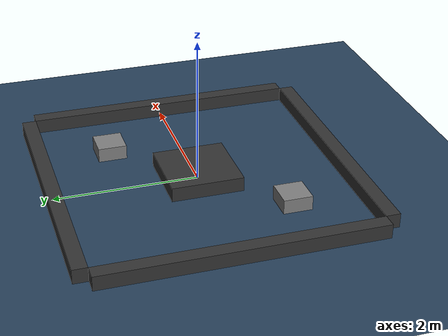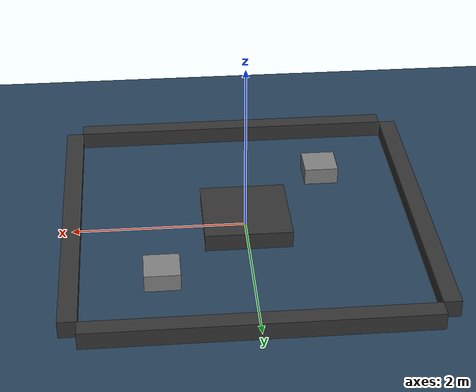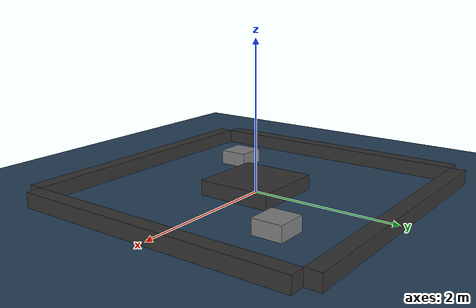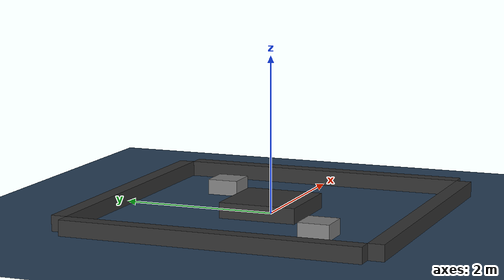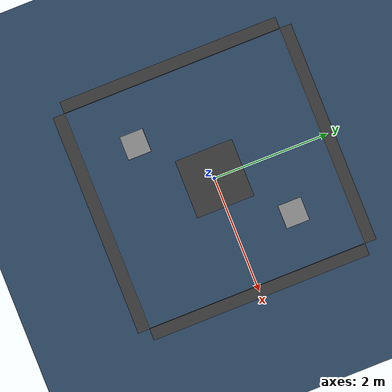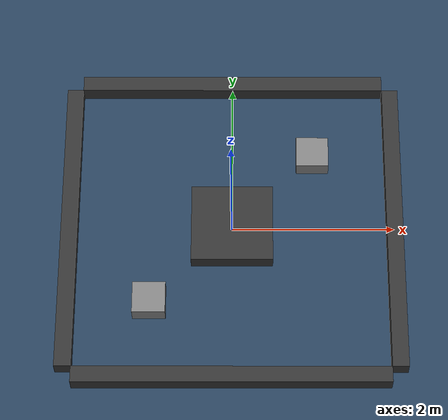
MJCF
<mujoco>
  <visual>
    <global offwidth="1920" offheight="1080" fovy="60" />
    <scale framelength="0.5" framewidth="0.05" />
  </visual>
  <asset>
    <texture type="skybox" builtin="gradient" rgb1="1 1 1" rgb2=".6 .8 1" width="256" height="256"/>
    <texture type="2d" name="groundplane" builtin="checker" mark="edge" rgb1="0.2 0.3 0.4" rgb2="0.1 0.2 0.3"
      markrgb="0.8 0.8 0.8" width="300" height="300"/>
    <material name="groundplane" texture="groundplane" texuniform="true" texrepeat="5 5" reflectance="0.2"/>
  </asset>

  <worldbody>
    <light pos="1.5 1.5 5.0" diffuse="2 1.9 1.9"/>
    <light pos="-1.5 -1.5 5.0" diffuse="2 1.9 1.9"/>

    <body name="floor" pos="0 0 -0.05">
      <geom  pos="0 0 0." size="0 0 0.05" type="plane" material="groundplane"/>
    </body>

    <body name="obs" pos="0 0 0.1">
      <geom type="box" pos="0 2 0" size="1.9 0.1 0.1" rgba="0.2 0.2 0.2 1"/>
      <geom type="box" pos="0 -2 0" size="1.9 0.1 0.1" rgba="0.2 0.2 0.2 1"/>
      <geom type="box" pos="2 0 0" size="0.1 1.9 0.1" rgba="0.2 0.2 0.2 1"/>
      <geom type="box" pos="-2 0 0" size="0.1 1.9 0.1" rgba="0.2 0.2 0.2 1"/>

      <geom type="box" pos="0 0.0 0" size="0.5 0.5 0.1" rgba="0.2 0.2 0.2 1"/>
    </body>

    <body name="a1" pos="0 0 0.1">
      <!-- xy translation + yaw -->
      <joint name="a1_x" type="slide" axis="1 0 0" range="-2 2"/>
      <joint name="a1_y" type="slide" axis="0 1 0" range="-2 2"/>
      <joint name="a1_yaw" type="hinge" axis="0 0 1" range="-180 180"/>
      <!-- cylinder geometry -->
      <geom type="cylinder" size="0.15 0.05" rgba="0.8 0.2 0.2 1"/>
    </body>

    <body name="a2" pos="0.0 0.0 0.1">
      <joint name="a2_x" type="slide" axis="1 0 0" range="-2 2"/>
      <joint name="a2_y" type="slide" axis="0 1 0" range="-2 2"/>
      <joint name="a2_yaw" type="hinge" axis="0 0 1" range="-180 180"/>

      <geom type="cylinder" size="0.15 0.05" rgba="0.2 0.2 0.8 1"/>
    </body>

    <body name="obj1" pos="1 1 0.1">
      <freejoint/>
      <geom size="0.2 0.2 0.1" type="box"/>
    </body>

    <body name="obj2" pos="-1 -1 0.1">
      <freejoint/>
      <geom size="0.2 0.2 0.1" type="box"/>
    </body>

  </worldbody>

</mujoco>
